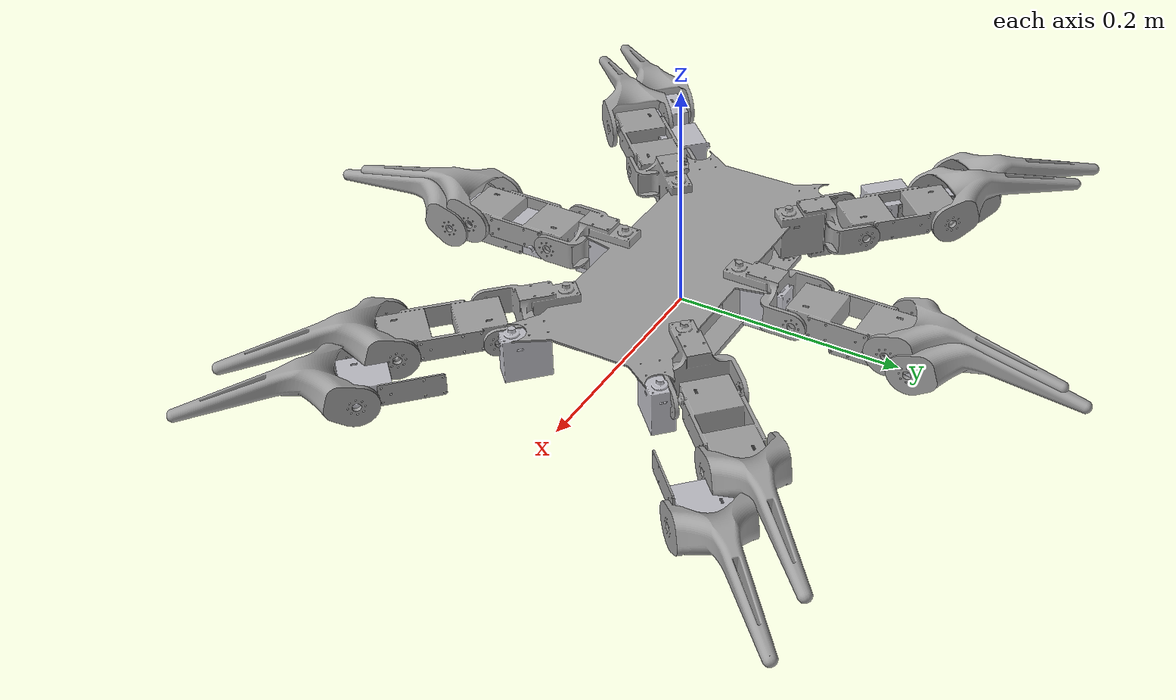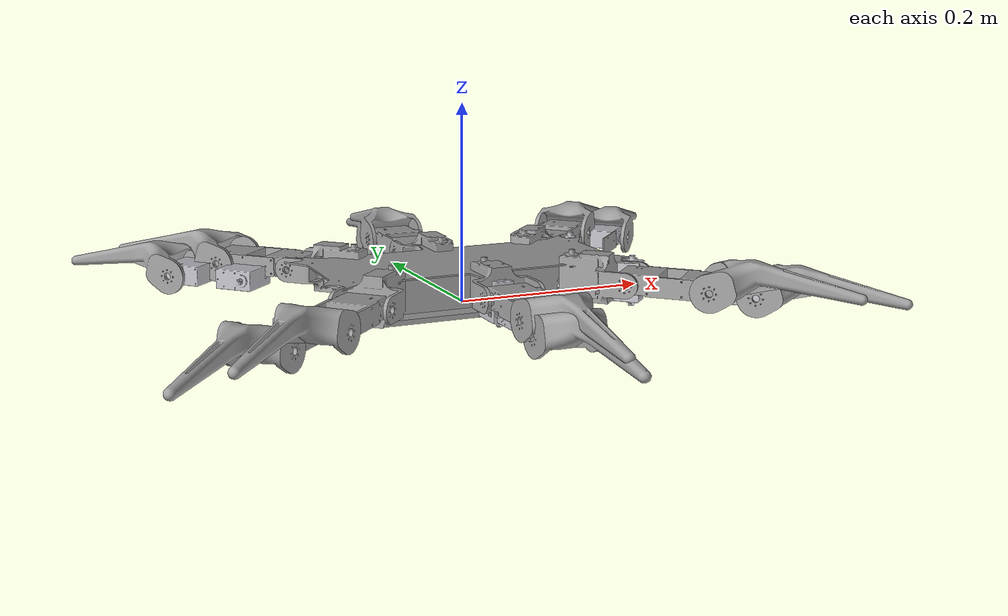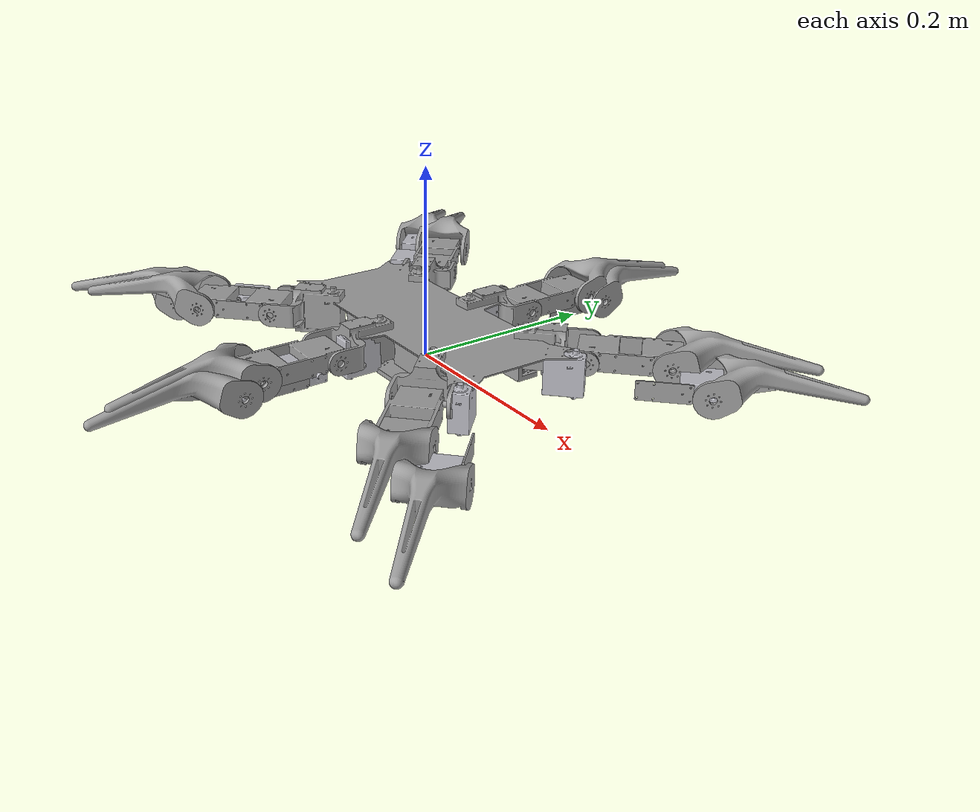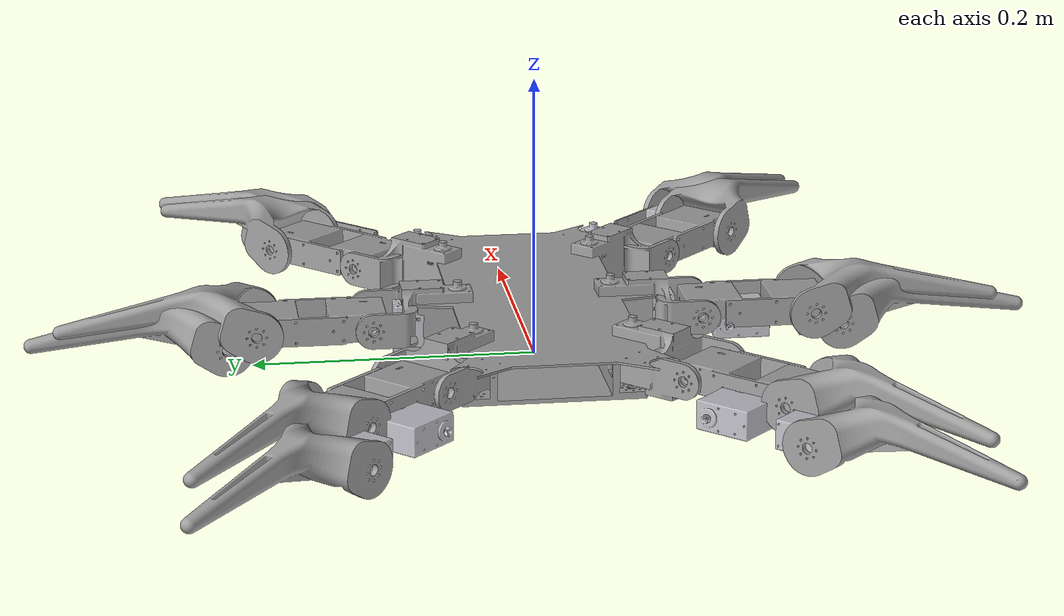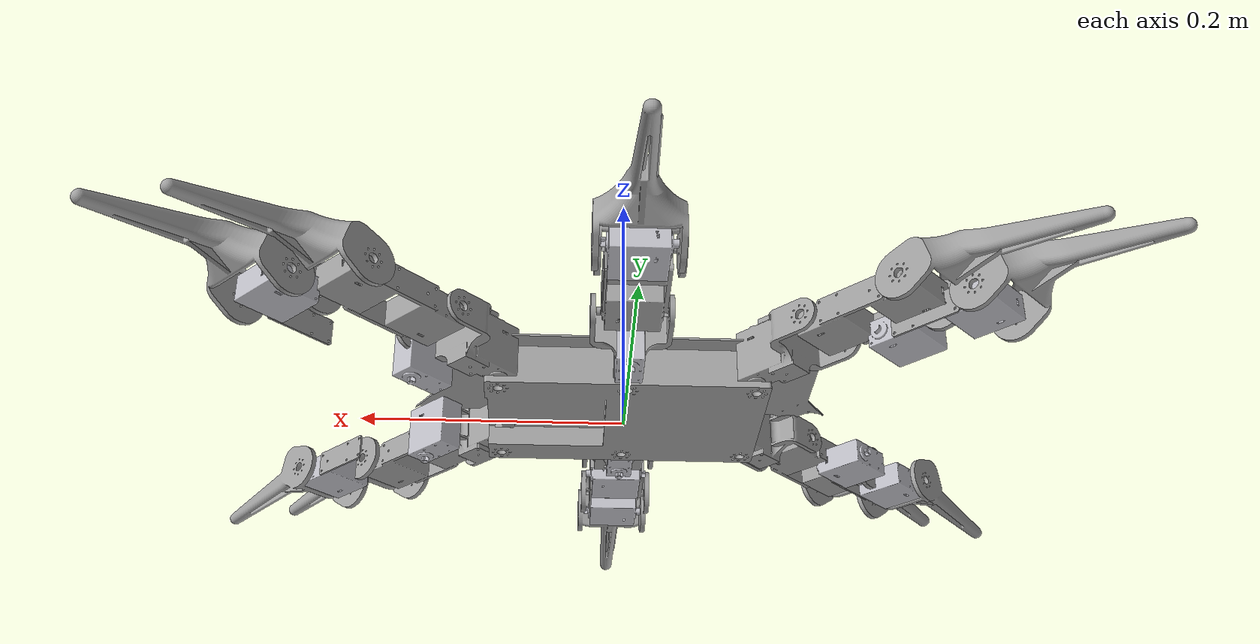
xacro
<?xml version="1.0" ?>
<robot name="spiderrobot" xmlns:xacro="http://www.ros.org/wiki/xacro">

<xacro:include filename="$(find robot_contest)/urdf/materials.xacro" />
<xacro:include filename="$(find robot_contest)/urdf/spiderrobot.trans" />
<xacro:include filename="$(find robot_contest)/urdf/spiderrobot.gazebo" />
<link name="base_link">
  <inertial>
    <origin xyz="3.282245274372618e-08 0.03481866967141663 -0.07599613973394033" rpy="0 0 0"/>
    <mass value="0.32443197759985953"/>
    <inertia ixx="0.002388" iyy="0.005496" izz="0.004327" ixy="-0.0" iyz="0.000796" ixz="-0.0"/>
  </inertial>
  <visual>
    <origin xyz="0 0 0" rpy="0 0 0"/>
    <geometry>
      <mesh filename="package://robot_contest/meshes/base_link.stl" scale="0.001 0.001 0.001"/>
    </geometry>
    <material name="_"/>
  </visual>
  <collision>
    <origin xyz="0 0 0" rpy="0 0 0"/>
    <geometry>
      <mesh filename="package://robot_contest/meshes/base_link.stl" scale="0.001 0.001 0.001"/>
    </geometry>
  </collision>
</link>

<link name="servo1_1">
  <inertial>
    <origin xyz="0.012488449462490642 0.012488246727511476 0.02001368504955774" rpy="0 0 0"/>
    <mass value="0.07069999262512665"/>
    <inertia ixx="1.6e-05" iyy="1.6e-05" izz="1.2e-05" ixy="-3e-06" iyz="-0.0" ixz="-0.0"/>
  </inertial>
  <visual>
    <origin xyz="-0.137126 -0.047626 -0.0015" rpy="0 0 0"/>
    <geometry>
      <mesh filename="package://robot_contest/meshes/servo1_1.stl" scale="0.001 0.001 0.001"/>
    </geometry>
    <material name=""/>
  </visual>
  <collision>
    <origin xyz="-0.137126 -0.047626 -0.0015" rpy="0 0 0"/>
    <geometry>
      <mesh filename="package://robot_contest/meshes/servo1_1.stl" scale="0.001 0.001 0.001"/>
    </geometry>
  </collision>
</link>

<link name="servo2_1">
  <inertial>
    <origin xyz="0.012488449462490642 -0.012488449246155067 0.020013685049556206" rpy="0 0 0"/>
    <mass value="0.07069999262512665"/>
    <inertia ixx="1.6e-05" iyy="1.6e-05" izz="1.2e-05" ixy="3e-06" iyz="0.0" ixz="-0.0"/>
  </inertial>
  <visual>
    <origin xyz="-0.137126 0.047626 -0.0015" rpy="0 0 0"/>
    <geometry>
      <mesh filename="package://robot_contest/meshes/servo2_1.stl" scale="0.001 0.001 0.001"/>
    </geometry>
    <material name=""/>
  </visual>
  <collision>
    <origin xyz="-0.137126 0.047626 -0.0015" rpy="0 0 0"/>
    <geometry>
      <mesh filename="package://robot_contest/meshes/servo2_1.stl" scale="0.001 0.001 0.001"/>
    </geometry>
  </collision>
</link>

<link name="servo3_1">
  <inertial>
    <origin xyz="1.0147565734629952e-07 0.017661611214488462 0.02001368504955727" rpy="0 0 0"/>
    <mass value="0.07069999262512665"/>
    <inertia ixx="1.9e-05" iyy="1.2e-05" izz="1.2e-05" ixy="0.0" iyz="-0.0" ixz="0.0"/>
  </inertial>
  <visual>
    <origin xyz="-0.0 -0.0625 -0.0015" rpy="0 0 0"/>
    <geometry>
      <mesh filename="package://robot_contest/meshes/servo3_1.stl" scale="0.001 0.001 0.001"/>
    </geometry>
    <material name=""/>
  </visual>
  <collision>
    <origin xyz="-0.0 -0.0625 -0.0015" rpy="0 0 0"/>
    <geometry>
      <mesh filename="package://robot_contest/meshes/servo3_1.stl" scale="0.001 0.001 0.001"/>
    </geometry>
  </collision>
</link>

<link name="servo4_1">
  <inertial>
    <origin xyz="1.0147565708061939e-07 -0.017661813733131138 0.02001368504955668" rpy="0 0 0"/>
    <mass value="0.07069999262512665"/>
    <inertia ixx="1.9e-05" iyy="1.2e-05" izz="1.2e-05" ixy="0.0" iyz="0.0" ixz="0.0"/>
  </inertial>
  <visual>
    <origin xyz="-0.0 0.0625 -0.0015" rpy="0 0 0"/>
    <geometry>
      <mesh filename="package://robot_contest/meshes/servo4_1.stl" scale="0.001 0.001 0.001"/>
    </geometry>
    <material name=""/>
  </visual>
  <collision>
    <origin xyz="-0.0 0.0625 -0.0015" rpy="0 0 0"/>
    <geometry>
      <mesh filename="package://robot_contest/meshes/servo4_1.stl" scale="0.001 0.001 0.001"/>
    </geometry>
  </collision>
</link>

<link name="servo5_1">
  <inertial>
    <origin xyz="-0.012488246511175749 0.01248824672751185 0.020013685049556976" rpy="0 0 0"/>
    <mass value="0.07069999262512665"/>
    <inertia ixx="1.6e-05" iyy="1.6e-05" izz="1.2e-05" ixy="3e-06" iyz="-0.0" ixz="0.0"/>
  </inertial>
  <visual>
    <origin xyz="0.137126 -0.047626 -0.0015" rpy="0 0 0"/>
    <geometry>
      <mesh filename="package://robot_contest/meshes/servo5_1.stl" scale="0.001 0.001 0.001"/>
    </geometry>
    <material name=""/>
  </visual>
  <collision>
    <origin xyz="0.137126 -0.047626 -0.0015" rpy="0 0 0"/>
    <geometry>
      <mesh filename="package://robot_contest/meshes/servo5_1.stl" scale="0.001 0.001 0.001"/>
    </geometry>
  </collision>
</link>

<link name="servo6_1">
  <inertial>
    <origin xyz="-0.012488246511176054 -0.012488449246154443 0.02001368504955692" rpy="0 0 0"/>
    <mass value="0.07069999262512665"/>
    <inertia ixx="1.6e-05" iyy="1.6e-05" izz="1.2e-05" ixy="-3e-06" iyz="0.0" ixz="0.0"/>
  </inertial>
  <visual>
    <origin xyz="0.137126 0.047626 -0.0015" rpy="0 0 0"/>
    <geometry>
      <mesh filename="package://robot_contest/meshes/servo6_1.stl" scale="0.001 0.001 0.001"/>
    </geometry>
    <material name=""/>
  </visual>
  <collision>
    <origin xyz="0.137126 0.047626 -0.0015" rpy="0 0 0"/>
    <geometry>
      <mesh filename="package://robot_contest/meshes/servo6_1.stl" scale="0.001 0.001 0.001"/>
    </geometry>
  </collision>
</link>

<link name="cover_1">
  <inertial>
    <origin xyz="-0.15303582986143344 -0.018104806605509255 -0.03691771626412458" rpy="0 0 0"/>
    <mass value="0.32438607775309336"/>
    <inertia ixx="0.001055" iyy="0.004163" izz="0.004326" ixy="0.0" iyz="0.000391" ixz="0.0"/>
  </inertial>
  <visual>
    <origin xyz="-0.153036 -0.052929 -0.0415" rpy="0 0 0"/>
    <geometry>
      <mesh filename="package://robot_contest/meshes/cover_1.stl" scale="0.001 0.001 0.001"/>
    </geometry>
    <material name="_"/>
  </visual>
  <collision>
    <origin xyz="-0.153036 -0.052929 -0.0415" rpy="0 0 0"/>
    <geometry>
      <mesh filename="package://robot_contest/meshes/cover_1.stl" scale="0.001 0.001 0.001"/>
    </geometry>
  </collision>
</link>

<link name="part1_1">
  <inertial>
    <origin xyz="0.008877265681727503 0.008875169024020066 0.01920864547721368" rpy="0 0 0"/>
    <mass value="0.010718837309292628"/>
    <inertia ixx="1e-05" iyy="1e-05" izz="2e-06" ixy="-0.0" iyz="-1e-06" ixz="-1e-06"/>
  </inertial>
  <visual>
    <origin xyz="-0.156571 -0.067071 0.0039" rpy="0 0 0"/>
    <geometry>
      <mesh filename="package://robot_contest/meshes/part1_1.stl" scale="0.001 0.001 0.001"/>
    </geometry>
    <material name="_"/>
  </visual>
  <collision>
    <origin xyz="-0.156571 -0.067071 0.0039" rpy="0 0 0"/>
    <geometry>
      <mesh filename="package://robot_contest/meshes/part1_1.stl" scale="0.001 0.001 0.001"/>
    </geometry>
  </collision>
</link>

<link name="part2_1">
  <inertial>
    <origin xyz="0.008875371758998996 -0.008877265465391831 0.019208645477211746" rpy="0 0 0"/>
    <mass value="0.010718837309292628"/>
    <inertia ixx="1e-05" iyy="1e-05" izz="2e-06" ixy="0.0" iyz="1e-06" ixz="-1e-06"/>
  </inertial>
  <visual>
    <origin xyz="-0.156571 0.067071 0.0039" rpy="0 0 0"/>
    <geometry>
      <mesh filename="package://robot_contest/meshes/part2_1.stl" scale="0.001 0.001 0.001"/>
    </geometry>
    <material name="_"/>
  </visual>
  <collision>
    <origin xyz="-0.156571 0.067071 0.0039" rpy="0 0 0"/>
    <geometry>
      <mesh filename="package://robot_contest/meshes/part2_1.stl" scale="0.001 0.001 0.001"/>
    </geometry>
  </collision>
</link>

<link name="part3_1">
  <inertial>
    <origin xyz="1.4406812617388342e-06 0.012552669650251966 0.019208645477213113" rpy="0 0 0"/>
    <mass value="0.010718837309292628"/>
    <inertia ixx="1.1e-05" iyy="1e-05" izz="2e-06" ixy="0.0" iyz="-1e-06" ixz="0.0"/>
  </inertial>
  <visual>
    <origin xyz="-0.0 -0.09 0.0039" rpy="0 0 0"/>
    <geometry>
      <mesh filename="package://robot_contest/meshes/part3_1.stl" scale="0.001 0.001 0.001"/>
    </geometry>
    <material name="_"/>
  </visual>
  <collision>
    <origin xyz="-0.0 -0.09 0.0039" rpy="0 0 0"/>
    <geometry>
      <mesh filename="package://robot_contest/meshes/part3_1.stl" scale="0.001 0.001 0.001"/>
    </geometry>
  </collision>
</link>

<link name="part4_1">
  <inertial>
    <origin xyz="-1.2377299472739092e-06 -0.012552872168894627 0.01920864547721229" rpy="0 0 0"/>
    <mass value="0.010718837309292628"/>
    <inertia ixx="1.1e-05" iyy="1e-05" izz="2e-06" ixy="0.0" iyz="1e-06" ixz="-0.0"/>
  </inertial>
  <visual>
    <origin xyz="-0.0 0.09 0.0039" rpy="0 0 0"/>
    <geometry>
      <mesh filename="package://robot_contest/meshes/part4_1.stl" scale="0.001 0.001 0.001"/>
    </geometry>
    <material name="_"/>
  </visual>
  <collision>
    <origin xyz="-0.0 0.09 0.0039" rpy="0 0 0"/>
    <geometry>
      <mesh filename="package://robot_contest/meshes/part4_1.stl" scale="0.001 0.001 0.001"/>
    </geometry>
  </collision>
</link>

<link name="part5_1">
  <inertial>
    <origin xyz="-0.008875168807684214 0.008877062946748837 0.019208645477212693" rpy="0 0 0"/>
    <mass value="0.010718837309292628"/>
    <inertia ixx="1e-05" iyy="1e-05" izz="2e-06" ixy="0.0" iyz="-1e-06" ixz="1e-06"/>
  </inertial>
  <visual>
    <origin xyz="0.156571 -0.067071 0.0039" rpy="0 0 0"/>
    <geometry>
      <mesh filename="package://robot_contest/meshes/part5_1.stl" scale="0.001 0.001 0.001"/>
    </geometry>
    <material name="_"/>
  </visual>
  <collision>
    <origin xyz="0.156571 -0.067071 0.0039" rpy="0 0 0"/>
    <geometry>
      <mesh filename="package://robot_contest/meshes/part5_1.stl" scale="0.001 0.001 0.001"/>
    </geometry>
  </collision>
</link>

<link name="part6_1">
  <inertial>
    <origin xyz="-0.008877062730412832 -0.008875371542662686 0.019208645477212644" rpy="0 0 0"/>
    <mass value="0.010718837309292628"/>
    <inertia ixx="1e-05" iyy="1e-05" izz="2e-06" ixy="-0.0" iyz="1e-06" ixz="1e-06"/>
  </inertial>
  <visual>
    <origin xyz="0.156571 0.067071 0.0039" rpy="0 0 0"/>
    <geometry>
      <mesh filename="package://robot_contest/meshes/part6_1.stl" scale="0.001 0.001 0.001"/>
    </geometry>
    <material name="_"/>
  </visual>
  <collision>
    <origin xyz="0.156571 0.067071 0.0039" rpy="0 0 0"/>
    <geometry>
      <mesh filename="package://robot_contest/meshes/part6_1.stl" scale="0.001 0.001 0.001"/>
    </geometry>
  </collision>
</link>

<link name="part7_1">
  <inertial>
    <origin xyz="0.007930031540899107 0.0075518428650224595 -0.00583266079439447" rpy="0 0 0"/>
    <mass value="0.010718837309292628"/>
    <inertia ixx="7e-06" iyy="5e-06" izz="1.1e-05" ixy="4e-06" iyz="-0.0" ixz="0.0"/>
  </inertial>
  <visual>
    <origin xyz="-0.169063 -0.087813 -0.026709" rpy="0 0 0"/>
    <geometry>
      <mesh filename="package://robot_contest/meshes/part7_1.stl" scale="0.001 0.001 0.001"/>
    </geometry>
    <material name="_"/>
  </visual>
  <collision>
    <origin xyz="-0.169063 -0.087813 -0.026709" rpy="0 0 0"/>
    <geometry>
      <mesh filename="package://robot_contest/meshes/part7_1.stl" scale="0.001 0.001 0.001"/>
    </geometry>
  </collision>
</link>

<link name="part8_1">
  <inertial>
    <origin xyz="0.007552045600001611 -0.007930031324563533 -0.005832660794396784" rpy="0 0 0"/>
    <mass value="0.010718837309292628"/>
    <inertia ixx="5e-06" iyy="7e-06" izz="1.1e-05" ixy="-4e-06" iyz="-0.0" ixz="-0.0"/>
  </inertial>
  <visual>
    <origin xyz="-0.177313 0.079563 -0.026709" rpy="0 0 0"/>
    <geometry>
      <mesh filename="package://robot_contest/meshes/part8_1.stl" scale="0.001 0.001 0.001"/>
    </geometry>
    <material name="_"/>
  </visual>
  <collision>
    <origin xyz="-0.177313 0.079563 -0.026709" rpy="0 0 0"/>
    <geometry>
      <mesh filename="package://robot_contest/meshes/part8_1.stl" scale="0.001 0.001 0.001"/>
    </geometry>
  </collision>
</link>

<link name="part9_1">
  <inertial>
    <origin xyz="-0.011400253047129822 0.010947127831105685 -0.0058326607943951884" rpy="0 0 0"/>
    <mass value="0.010718837309292628"/>
    <inertia ixx="2e-06" iyy="1e-05" izz="1.1e-05" ixy="1e-06" iyz="-0.0" ixz="0.0"/>
  </inertial>
  <visual>
    <origin xyz="-0.005834 -0.1135 -0.026709" rpy="0 0 0"/>
    <geometry>
      <mesh filename="package://robot_contest/meshes/part9_1.stl" scale="0.001 0.001 0.001"/>
    </geometry>
    <material name="_"/>
  </visual>
  <collision>
    <origin xyz="-0.005834 -0.1135 -0.026709" rpy="0 0 0"/>
    <geometry>
      <mesh filename="package://robot_contest/meshes/part9_1.stl" scale="0.001 0.001 0.001"/>
    </geometry>
  </collision>
</link>

<link name="part10_1">
  <inertial>
    <origin xyz="-0.00026754400155569024 -0.01094733034974836 -0.005832660794396226" rpy="0 0 0"/>
    <mass value="0.010718837309292628"/>
    <inertia ixx="2e-06" iyy="1e-05" izz="1.1e-05" ixy="1e-06" iyz="0.0" ixz="-0.0"/>
  </inertial>
  <visual>
    <origin xyz="-0.005834 0.1135 -0.026709" rpy="0 0 0"/>
    <geometry>
      <mesh filename="package://robot_contest/meshes/part10_1.stl" scale="0.001 0.001 0.001"/>
    </geometry>
    <material name="_"/>
  </visual>
  <collision>
    <origin xyz="-0.005834 0.1135 -0.026709" rpy="0 0 0"/>
    <geometry>
      <mesh filename="package://robot_contest/meshes/part10_1.stl" scale="0.001 0.001 0.001"/>
    </geometry>
  </collision>
</link>

<link name="part11_1">
  <inertial>
    <origin xyz="-0.00755184264868658 0.00792982880592033 -0.0058326607943957505" rpy="0 0 0"/>
    <mass value="0.010718837309292628"/>
    <inertia ixx="5e-06" iyy="7e-06" izz="1.1e-05" ixy="-4e-06" iyz="0.0" ixz="0.0"/>
  </inertial>
  <visual>
    <origin xyz="0.177313 -0.079563 -0.026709" rpy="0 0 0"/>
    <geometry>
      <mesh filename="package://robot_contest/meshes/part11_1.stl" scale="0.001 0.001 0.001"/>
    </geometry>
    <material name="_"/>
  </visual>
  <collision>
    <origin xyz="0.177313 -0.079563 -0.026709" rpy="0 0 0"/>
    <geometry>
      <mesh filename="package://robot_contest/meshes/part11_1.stl" scale="0.001 0.001 0.001"/>
    </geometry>
  </collision>
</link>

<link name="part12_1">
  <inertial>
    <origin xyz="-0.007929828589584353 -0.007552045383665287 -0.0058326607943957505" rpy="0 0 0"/>
    <mass value="0.010718837309292628"/>
    <inertia ixx="7e-06" iyy="5e-06" izz="1.1e-05" ixy="4e-06" iyz="0.0" ixz="-0.0"/>
  </inertial>
  <visual>
    <origin xyz="0.169063 0.087813 -0.026709" rpy="0 0 0"/>
    <geometry>
      <mesh filename="package://robot_contest/meshes/part12_1.stl" scale="0.001 0.001 0.001"/>
    </geometry>
    <material name="_"/>
  </visual>
  <collision>
    <origin xyz="0.169063 0.087813 -0.026709" rpy="0 0 0"/>
    <geometry>
      <mesh filename="package://robot_contest/meshes/part12_1.stl" scale="0.001 0.001 0.001"/>
    </geometry>
  </collision>
</link>

<link name="servo7_1">
  <inertial>
    <origin xyz="0.025704526357907126 -0.011790913436240488 1.4085954624931674e-15" rpy="0 0 0"/>
    <mass value="0.07069999262512665"/>
    <inertia ixx="1.2e-05" iyy="1.2e-05" izz="1.9e-05" ixy="0.0" iyz="-0.0" ixz="-0.0"/>
  </inertial>
  <visual>
    <origin xyz="-0.171509 -0.118601 -0.020875" rpy="0 0 0"/>
    <geometry>
      <mesh filename="package://robot_contest/meshes/servo7_1.stl" scale="0.001 0.001 0.001"/>
    </geometry>
    <material name=""/>
  </visual>
  <collision>
    <origin xyz="-0.171509 -0.118601 -0.020875" rpy="0 0 0"/>
    <geometry>
      <mesh filename="package://robot_contest/meshes/servo7_1.stl" scale="0.001 0.001 0.001"/>
    </geometry>
  </collision>
</link>

<link name="servo8_1">
  <inertial>
    <origin xyz="0.025704526357907154 0.011791710917596607 -1.366962099069724e-15" rpy="0 0 0"/>
    <mass value="0.07069999262512665"/>
    <inertia ixx="1.2e-05" iyy="1.2e-05" izz="1.9e-05" ixy="-0.0" iyz="-0.0" ixz="-0.0"/>
  </inertial>
  <visual>
    <origin xyz="-0.171509 0.118602 -0.020875" rpy="0 0 0"/>
    <geometry>
      <mesh filename="package://robot_contest/meshes/servo8_1.stl" scale="0.001 0.001 0.001"/>
    </geometry>
    <material name=""/>
  </visual>
  <collision>
    <origin xyz="-0.171509 0.118602 -0.020875" rpy="0 0 0"/>
    <geometry>
      <mesh filename="package://robot_contest/meshes/servo8_1.stl" scale="0.001 0.001 0.001"/>
    </geometry>
  </collision>
</link>

<link name="servo9_1">
  <inertial>
    <origin xyz="0.026513786525214435 0.009838186266869442 5.793976409762536e-16" rpy="0 0 0"/>
    <mass value="0.07069999262512665"/>
    <inertia ixx="1.2e-05" iyy="1.2e-05" izz="1.9e-05" ixy="0.0" iyz="-0.0" ixz="-0.0"/>
  </inertial>
  <visual>
    <origin xyz="0.025875 -0.137 -0.020875" rpy="0 0 0"/>
    <geometry>
      <mesh filename="package://robot_contest/meshes/servo9_1.stl" scale="0.001 0.001 0.001"/>
    </geometry>
    <material name=""/>
  </visual>
  <collision>
    <origin xyz="0.025875 -0.137 -0.020875" rpy="0 0 0"/>
    <geometry>
      <mesh filename="package://robot_contest/meshes/servo9_1.stl" scale="0.001 0.001 0.001"/>
    </geometry>
  </collision>
</link>

<link name="servo10_1">
  <inertial>
    <origin xyz="0.026513786525213995 -0.009838388785511742 -5.585809592645319e-16" rpy="0 0 0"/>
    <mass value="0.07069999262512665"/>
    <inertia ixx="1.2e-05" iyy="1.2e-05" izz="1.9e-05" ixy="-0.0" iyz="-0.0" ixz="0.0"/>
  </inertial>
  <visual>
    <origin xyz="0.025875 0.137 -0.020875" rpy="0 0 0"/>
    <geometry>
      <mesh filename="package://robot_contest/meshes/servo10_1.stl" scale="0.001 0.001 0.001"/>
    </geometry>
    <material name=""/>
  </visual>
  <collision>
    <origin xyz="0.025875 0.137 -0.020875" rpy="0 0 0"/>
    <geometry>
      <mesh filename="package://robot_contest/meshes/servo10_1.stl" scale="0.001 0.001 0.001"/>
    </geometry>
  </collision>
</link>

<link name="servo11_1">
  <inertial>
    <origin xyz="0.011790913652576313 0.025704323622928404 -2.7755575615628914e-17" rpy="0 0 0"/>
    <mass value="0.07069999262512665"/>
    <inertia ixx="1.2e-05" iyy="1.2e-05" izz="1.9e-05" ixy="-0.0" iyz="-0.0" ixz="-0.0"/>
  </inertial>
  <visual>
    <origin xyz="0.208101 -0.082009 -0.020875" rpy="0 0 0"/>
    <geometry>
      <mesh filename="package://robot_contest/meshes/servo11_1.stl" scale="0.001 0.001 0.001"/>
    </geometry>
    <material name=""/>
  </visual>
  <collision>
    <origin xyz="0.208101 -0.082009 -0.020875" rpy="0 0 0"/>
    <geometry>
      <mesh filename="package://robot_contest/meshes/servo11_1.stl" scale="0.001 0.001 0.001"/>
    </geometry>
  </collision>
</link>

<link name="servo12_1">
  <inertial>
    <origin xyz="0.011790913652575896 -0.02570452614157083 -2.42861286636753e-17" rpy="0 0 0"/>
    <mass value="0.07069999262512665"/>
    <inertia ixx="1.2e-05" iyy="1.2e-05" izz="1.9e-05" ixy="0.0" iyz="-0.0" ixz="-0.0"/>
  </inertial>
  <visual>
    <origin xyz="0.208101 0.082009 -0.020875" rpy="0 0 0"/>
    <geometry>
      <mesh filename="package://robot_contest/meshes/servo12_1.stl" scale="0.001 0.001 0.001"/>
    </geometry>
    <material name=""/>
  </visual>
  <collision>
    <origin xyz="0.208101 0.082009 -0.020875" rpy="0 0 0"/>
    <geometry>
      <mesh filename="package://robot_contest/meshes/servo12_1.stl" scale="0.001 0.001 0.001"/>
    </geometry>
  </collision>
</link>

<link name="part13_1">
  <inertial>
    <origin xyz="0.057132069906387195 -0.03834292511619296 3.9216201648539784e-07" rpy="0 0 0"/>
    <mass value="0.12025967261023773"/>
    <inertia ixx="8.8e-05" iyy="8.6e-05" izz="0.000166" ixy="-4.5e-05" iyz="0.0" ixz="-0.0"/>
  </inertial>
  <visual>
    <origin xyz="-0.19555 -0.133451 -0.020875" rpy="0 0 0"/>
    <geometry>
      <mesh filename="package://robot_contest/meshes/part13_1.stl" scale="0.001 0.001 0.001"/>
    </geometry>
    <material name="_"/>
  </visual>
  <collision>
    <origin xyz="-0.19555 -0.133451 -0.020875" rpy="0 0 0"/>
    <geometry>
      <mesh filename="package://robot_contest/meshes/part13_1.stl" scale="0.001 0.001 0.001"/>
    </geometry>
  </collision>
</link>

<link name="part14_1">
  <inertial>
    <origin xyz="-0.03940277032397255 -0.058192117632806906 3.921620186468633e-07" rpy="0 0 0"/>
    <mass value="0.12025967261023773"/>
    <inertia ixx="8.6e-05" iyy="8.8e-05" izz="0.000166" ixy="4.5e-05" iyz="0.0" ixz="0.0"/>
  </inertial>
  <visual>
    <origin xyz="-0.19555 0.133451 -0.020875" rpy="0 0 0"/>
    <geometry>
      <mesh filename="package://robot_contest/meshes/part14_1.stl" scale="0.001 0.001 0.001"/>
    </geometry>
    <material name="_"/>
  </visual>
  <collision>
    <origin xyz="-0.19555 0.133451 -0.020875" rpy="0 0 0"/>
    <geometry>
      <mesh filename="package://robot_contest/meshes/part14_1.stl" scale="0.001 0.001 0.001"/>
    </geometry>
  </collision>
</link>

<link name="part15_1">
  <inertial>
    <origin xyz="0.06751054162330213 0.01328579774012012 3.921620219150823e-07" rpy="0 0 0"/>
    <mass value="0.12025967261023773"/>
    <inertia ixx="0.000132" iyy="4.2e-05" izz="0.000166" ixy="1e-06" iyz="0.0" ixz="-0.0"/>
  </inertial>
  <visual>
    <origin xyz="0.019375 -0.1645 -0.020875" rpy="0 0 0"/>
    <geometry>
      <mesh filename="package://robot_contest/meshes/part15_1.stl" scale="0.001 0.001 0.001"/>
    </geometry>
    <material name="_"/>
  </visual>
  <collision>
    <origin xyz="0.019375 -0.1645 -0.020875" rpy="0 0 0"/>
    <geometry>
      <mesh filename="package://robot_contest/meshes/part15_1.stl" scale="0.001 0.001 0.001"/>
    </geometry>
  </collision>
</link>

<link name="part16_1">
  <inertial>
    <origin xyz="-0.06901033867198803 -0.013286000258761477 3.921620202601561e-07" rpy="0 0 0"/>
    <mass value="0.12025967261023773"/>
    <inertia ixx="0.000132" iyy="4.2e-05" izz="0.000166" ixy="1e-06" iyz="-0.0" ixz="0.0"/>
  </inertial>
  <visual>
    <origin xyz="0.019375 0.1645 -0.020875" rpy="0 0 0"/>
    <geometry>
      <mesh filename="package://robot_contest/meshes/part16_1.stl" scale="0.001 0.001 0.001"/>
    </geometry>
    <material name="_"/>
  </visual>
  <collision>
    <origin xyz="0.019375 0.1645 -0.020875" rpy="0 0 0"/>
    <geometry>
      <mesh filename="package://robot_contest/meshes/part16_1.stl" scale="0.001 0.001 0.001"/>
    </geometry>
  </collision>
</link>

<link name="part17_1">
  <inertial>
    <origin xyz="0.03834292533252934 0.05713186717140509 3.921620210269039e-07" rpy="0 0 0"/>
    <mass value="0.12025967261023773"/>
    <inertia ixx="8.6e-05" iyy="8.8e-05" izz="0.000166" ixy="4.5e-05" iyz="-0.0" ixz="-0.0"/>
  </inertial>
  <visual>
    <origin xyz="0.222951 -0.10605 -0.020875" rpy="0 0 0"/>
    <geometry>
      <mesh filename="package://robot_contest/meshes/part17_1.stl" scale="0.001 0.001 0.001"/>
    </geometry>
    <material name="_"/>
  </visual>
  <collision>
    <origin xyz="0.222951 -0.10605 -0.020875" rpy="0 0 0"/>
    <geometry>
      <mesh filename="package://robot_contest/meshes/part17_1.stl" scale="0.001 0.001 0.001"/>
    </geometry>
  </collision>
</link>

<link name="part18_1">
  <inertial>
    <origin xyz="-0.05819191489782782 0.039402770540309315 3.9216202103731224e-07" rpy="0 0 0"/>
    <mass value="0.12025967261023773"/>
    <inertia ixx="8.8e-05" iyy="8.6e-05" izz="0.000166" ixy="-4.5e-05" iyz="-0.0" ixz="0.0"/>
  </inertial>
  <visual>
    <origin xyz="0.222951 0.10605 -0.020875" rpy="0 0 0"/>
    <geometry>
      <mesh filename="package://robot_contest/meshes/part18_1.stl" scale="0.001 0.001 0.001"/>
    </geometry>
    <material name="_"/>
  </visual>
  <collision>
    <origin xyz="0.222951 0.10605 -0.020875" rpy="0 0 0"/>
    <geometry>
      <mesh filename="package://robot_contest/meshes/part18_1.stl" scale="0.001 0.001 0.001"/>
    </geometry>
  </collision>
</link>

<link name="part19_1">
  <inertial>
    <origin xyz="-0.03852088697722983 0.05695393562242289 -0.007499607837977276" rpy="0 0 0"/>
    <mass value="0.12025967261023773"/>
    <inertia ixx="8.8e-05" iyy="8.6e-05" izz="0.000166" ixy="-4.5e-05" iyz="-0.0" ixz="0.0"/>
  </inertial>
  <visual>
    <origin xyz="-0.223835 -0.105166 -0.028375" rpy="0 0 0"/>
    <geometry>
      <mesh filename="package://robot_contest/meshes/part19_1.stl" scale="0.001 0.001 0.001"/>
    </geometry>
    <material name="_"/>
  </visual>
  <collision>
    <origin xyz="-0.223835 -0.105166 -0.028375" rpy="0 0 0"/>
    <geometry>
      <mesh filename="package://robot_contest/meshes/part19_1.stl" scale="0.001 0.001 0.001"/>
    </geometry>
  </collision>
</link>

<link name="part20_1">
  <inertial>
    <origin xyz="0.06862095325312759 0.02897470208928979 -0.007499607837979996" rpy="0 0 0"/>
    <mass value="0.12025967261023773"/>
    <inertia ixx="8.6e-05" iyy="8.8e-05" izz="0.000166" ixy="4.5e-05" iyz="-0.0" ixz="-0.0"/>
  </inertial>
  <visual>
    <origin xyz="-0.213228 0.09456 -0.028375" rpy="0 0 0"/>
    <geometry>
      <mesh filename="package://robot_contest/meshes/part20_1.stl" scale="0.001 0.001 0.001"/>
    </geometry>
    <material name="_"/>
  </visual>
  <collision>
    <origin xyz="-0.213228 0.09456 -0.028375" rpy="0 0 0"/>
    <geometry>
      <mesh filename="package://robot_contest/meshes/part20_1.stl" scale="0.001 0.001 0.001"/>
    </geometry>
  </collision>
</link>

<link name="part21_1">
  <inertial>
    <origin xyz="-0.06751033867198804 0.028033999741238408 -0.007499607837978341" rpy="0 0 0"/>
    <mass value="0.12025967261023773"/>
    <inertia ixx="0.000132" iyy="4.2e-05" izz="0.000166" ixy="1e-06" iyz="-0.0" ixz="0.0"/>
  </inertial>
  <visual>
    <origin xyz="-0.020625 -0.1495 -0.028375" rpy="0 0 0"/>
    <geometry>
      <mesh filename="package://robot_contest/meshes/part21_1.stl" scale="0.001 0.001 0.001"/>
    </geometry>
    <material name="_"/>
  </visual>
  <collision>
    <origin xyz="-0.020625 -0.1495 -0.028375" rpy="0 0 0"/>
    <geometry>
      <mesh filename="package://robot_contest/meshes/part21_1.stl" scale="0.001 0.001 0.001"/>
    </geometry>
  </collision>
</link>

<link name="part22_1">
  <inertial>
    <origin xyz="0.06901054162330238 -0.028034202259880597 -0.007499607837979771" rpy="0 0 0"/>
    <mass value="0.12025967261023773"/>
    <inertia ixx="0.000132" iyy="4.2e-05" izz="0.000166" ixy="1e-06" iyz="0.0" ixz="-0.0"/>
  </inertial>
  <visual>
    <origin xyz="-0.020625 0.1495 -0.028375" rpy="0 0 0"/>
    <geometry>
      <mesh filename="package://robot_contest/meshes/part22_1.stl" scale="0.001 0.001 0.001"/>
    </geometry>
    <material name="_"/>
  </visual>
  <collision>
    <origin xyz="-0.020625 0.1495 -0.028375" rpy="0 0 0"/>
    <geometry>
      <mesh filename="package://robot_contest/meshes/part22_1.stl" scale="0.001 0.001 0.001"/>
    </geometry>
  </collision>
</link>

<link name="part23_1">
  <inertial>
    <origin xyz="-0.06755993540608735 -0.027914089712207935 -0.007499607837979202" rpy="0 0 0"/>
    <mass value="0.12025967261023773"/>
    <inertia ixx="8.6e-05" iyy="8.8e-05" izz="0.000166" ixy="4.5e-05" iyz="0.0" ixz="0.0"/>
  </inertial>
  <visual>
    <origin xyz="0.18406 -0.123728 -0.028375" rpy="0 0 0"/>
    <geometry>
      <mesh filename="package://robot_contest/meshes/part23_1.stl" scale="0.001 0.001 0.001"/>
    </geometry>
    <material name="_"/>
  </visual>
  <collision>
    <origin xyz="0.18406 -0.123728 -0.028375" rpy="0 0 0"/>
    <geometry>
      <mesh filename="package://robot_contest/meshes/part23_1.stl" scale="0.001 0.001 0.001"/>
    </geometry>
  </collision>
</link>

<link name="part24_1">
  <inertial>
    <origin xyz="0.02897490482426915 -0.06862095303679103 -0.007499607837979087" rpy="0 0 0"/>
    <mass value="0.12025967261023773"/>
    <inertia ixx="8.8e-05" iyy="8.6e-05" izz="0.000166" ixy="-4.5e-05" iyz="0.0" ixz="-0.0"/>
  </inertial>
  <visual>
    <origin xyz="0.18406 0.123728 -0.028375" rpy="0 0 0"/>
    <geometry>
      <mesh filename="package://robot_contest/meshes/part24_1.stl" scale="0.001 0.001 0.001"/>
    </geometry>
    <material name="_"/>
  </visual>
  <collision>
    <origin xyz="0.18406 0.123728 -0.028375" rpy="0 0 0"/>
    <geometry>
      <mesh filename="package://robot_contest/meshes/part24_1.stl" scale="0.001 0.001 0.001"/>
    </geometry>
  </collision>
</link>

<link name="servo13_1">
  <inertial>
    <origin xyz="-0.0016633434287527116 0.02664092394247075 1.9845236565174673e-15" rpy="0 0 0"/>
    <mass value="0.07069999262512665"/>
    <inertia ixx="1.2e-05" iyy="1.2e-05" izz="1.9e-05" ixy="0.0" iyz="0.0" ixz="0.0"/>
  </inertial>
  <visual>
    <origin xyz="-0.242446 -0.123777 -0.020875" rpy="0 0 0"/>
    <geometry>
      <mesh filename="package://robot_contest/meshes/servo13_1.stl" scale="0.001 0.001 0.001"/>
    </geometry>
    <material name=""/>
  </visual>
  <collision>
    <origin xyz="-0.242446 -0.123777 -0.020875" rpy="0 0 0"/>
    <geometry>
      <mesh filename="package://robot_contest/meshes/servo13_1.stl" scale="0.001 0.001 0.001"/>
    </geometry>
  </collision>
</link>

<link name="servo14_1">
  <inertial>
    <origin xyz="-0.0016633434287518234 -0.02664012646111391 -1.8006429680639258e-15" rpy="0 0 0"/>
    <mass value="0.07069999262512665"/>
    <inertia ixx="1.2e-05" iyy="1.2e-05" izz="1.9e-05" ixy="-0.0" iyz="-0.0" ixz="0.0"/>
  </inertial>
  <visual>
    <origin xyz="-0.242446 0.123778 -0.020875" rpy="0 0 0"/>
    <geometry>
      <mesh filename="package://robot_contest/meshes/servo14_1.stl" scale="0.001 0.001 0.001"/>
    </geometry>
    <material name=""/>
  </visual>
  <collision>
    <origin xyz="-0.242446 0.123778 -0.020875" rpy="0 0 0"/>
    <geometry>
      <mesh filename="package://robot_contest/meshes/servo14_1.stl" scale="0.001 0.001 0.001"/>
    </geometry>
  </collision>
</link>

<link name="servo15_1">
  <inertial>
    <origin xyz="-0.02001358357389976 0.017661611214488893 7.042977312465837e-16" rpy="0 0 0"/>
    <mass value="0.07069999262512665"/>
    <inertia ixx="1.2e-05" iyy="1.2e-05" izz="1.9e-05" ixy="0.0" iyz="0.0" ixz="0.0"/>
  </inertial>
  <visual>
    <origin xyz="-0.020625 -0.19082 -0.020875" rpy="0 0 0"/>
    <geometry>
      <mesh filename="package://robot_contest/meshes/servo15_1.stl" scale="0.001 0.001 0.001"/>
    </geometry>
    <material name=""/>
  </visual>
  <collision>
    <origin xyz="-0.020625 -0.19082 -0.020875" rpy="0 0 0"/>
    <geometry>
      <mesh filename="package://robot_contest/meshes/servo15_1.stl" scale="0.001 0.001 0.001"/>
    </geometry>
  </collision>
</link>

<link name="servo16_1">
  <inertial>
    <origin xyz="-0.020013583573899388 -0.01766181373313125 -8.187894806610529e-16" rpy="0 0 0"/>
    <mass value="0.07069999262512665"/>
    <inertia ixx="1.2e-05" iyy="1.2e-05" izz="1.9e-05" ixy="-0.0" iyz="0.0" ixz="-0.0"/>
  </inertial>
  <visual>
    <origin xyz="-0.020625 0.19082 -0.020875" rpy="0 0 0"/>
    <geometry>
      <mesh filename="package://robot_contest/meshes/servo16_1.stl" scale="0.001 0.001 0.001"/>
    </geometry>
    <material name=""/>
  </visual>
  <collision>
    <origin xyz="-0.020625 0.19082 -0.020875" rpy="0 0 0"/>
    <geometry>
      <mesh filename="package://robot_contest/meshes/servo16_1.stl" scale="0.001 0.001 0.001"/>
    </geometry>
  </collision>
</link>

<link name="servo17_1">
  <inertial>
    <origin xyz="-0.026640923726134302 -0.0016635461637316273 -4.5102810375396984e-17" rpy="0 0 0"/>
    <mass value="0.07069999262512665"/>
    <inertia ixx="1.2e-05" iyy="1.2e-05" izz="1.9e-05" ixy="-0.0" iyz="0.0" ixz="-0.0"/>
  </inertial>
  <visual>
    <origin xyz="0.213277 -0.152946 -0.020875" rpy="0 0 0"/>
    <geometry>
      <mesh filename="package://robot_contest/meshes/servo17_1.stl" scale="0.001 0.001 0.001"/>
    </geometry>
    <material name=""/>
  </visual>
  <collision>
    <origin xyz="0.213277 -0.152946 -0.020875" rpy="0 0 0"/>
    <geometry>
      <mesh filename="package://robot_contest/meshes/servo17_1.stl" scale="0.001 0.001 0.001"/>
    </geometry>
  </collision>
</link>

<link name="servo18_1">
  <inertial>
    <origin xyz="-0.02664092372613458 0.0016633436450886052 -3.469446951953614e-18" rpy="0 0 0"/>
    <mass value="0.07069999262512665"/>
    <inertia ixx="1.2e-05" iyy="1.2e-05" izz="1.9e-05" ixy="0.0" iyz="-0.0" ixz="0.0"/>
  </inertial>
  <visual>
    <origin xyz="0.213277 0.152946 -0.020875" rpy="0 0 0"/>
    <geometry>
      <mesh filename="package://robot_contest/meshes/servo18_1.stl" scale="0.001 0.001 0.001"/>
    </geometry>
    <material name=""/>
  </visual>
  <collision>
    <origin xyz="0.213277 0.152946 -0.020875" rpy="0 0 0"/>
    <geometry>
      <mesh filename="package://robot_contest/meshes/servo18_1.stl" scale="0.001 0.001 0.001"/>
    </geometry>
  </collision>
</link>

<link name="part25_1">
  <inertial>
    <origin xyz="0.0017361935097957026 0.044915648494241484 0.008899740383932198" rpy="0 0 0"/>
    <mass value="0.06576925216163401"/>
    <inertia ixx="4.5e-05" iyy="7e-05" izz="0.000103" ixy="-1.7e-05" iyz="1e-06" ixz="-4e-06"/>
  </inertial>
  <visual>
    <origin xyz="-0.26571 -0.139404 -0.020875" rpy="0 0 0"/>
    <geometry>
      <mesh filename="package://robot_contest/meshes/part25_1.stl" scale="0.001 0.001 0.001"/>
    </geometry>
    <material name="_"/>
  </visual>
  <collision>
    <origin xyz="-0.26571 -0.139404 -0.020875" rpy="0 0 0"/>
    <geometry>
      <mesh filename="package://robot_contest/meshes/part25_1.stl" scale="0.001 0.001 0.001"/>
    </geometry>
  </collision>
</link>

<link name="part26_1">
  <inertial>
    <origin xyz="0.009877618182187353 -0.03677342634049424 0.008899740383927643" rpy="0 0 0"/>
    <mass value="0.06576925216163401"/>
    <inertia ixx="7e-05" iyy="4.5e-05" izz="0.000103" ixy="1.7e-05" iyz="4e-06" ixz="1e-06"/>
  </inertial>
  <visual>
    <origin xyz="-0.26571 0.139405 -0.020875" rpy="0 0 0"/>
    <geometry>
      <mesh filename="package://robot_contest/meshes/part26_1.stl" scale="0.001 0.001 0.001"/>
    </geometry>
    <material name="_"/>
  </visual>
  <collision>
    <origin xyz="-0.26571 0.139405 -0.020875" rpy="0 0 0"/>
    <geometry>
      <mesh filename="package://robot_contest/meshes/part26_1.stl" scale="0.001 0.001 0.001"/>
    </geometry>
  </collision>
</link>

<link name="part27_1">
  <inertial>
    <origin xyz="-0.03053175511870967 0.03298771831863015 0.008899740383930703" rpy="0 0 0"/>
    <mass value="0.06576925216163401"/>
    <inertia ixx="7.4e-05" iyy="4e-05" izz="0.000103" ixy="-1.2e-05" iyz="-2e-06" ixz="-3e-06"/>
  </inertial>
  <visual>
    <origin xyz="-0.026025 -0.21832 -0.020875" rpy="0 0 0"/>
    <geometry>
      <mesh filename="package://robot_contest/meshes/part27_1.stl" scale="0.001 0.001 0.001"/>
    </geometry>
    <material name="_"/>
  </visual>
  <collision>
    <origin xyz="-0.026025 -0.21832 -0.020875" rpy="0 0 0"/>
    <geometry>
      <mesh filename="package://robot_contest/meshes/part27_1.stl" scale="0.001 0.001 0.001"/>
    </geometry>
  </collision>
</link>

<link name="part28_1">
  <inertial>
    <origin xyz="-0.019018041929975315 -0.032987920837272505 0.00889974038392878" rpy="0 0 0"/>
    <mass value="0.06576925216163401"/>
    <inertia ixx="7.4e-05" iyy="4e-05" izz="0.000103" ixy="-1.2e-05" iyz="2e-06" ixz="3e-06"/>
  </inertial>
  <visual>
    <origin xyz="-0.026025 0.21832 -0.020875" rpy="0 0 0"/>
    <geometry>
      <mesh filename="package://robot_contest/meshes/part28_1.stl" scale="0.001 0.001 0.001"/>
    </geometry>
    <material name="_"/>
  </visual>
  <collision>
    <origin xyz="-0.026025 0.21832 -0.020875" rpy="0 0 0"/>
    <geometry>
      <mesh filename="package://robot_contest/meshes/part28_1.stl" scale="0.001 0.001 0.001"/>
    </geometry>
  </collision>
</link>

<link name="part29_1">
  <inertial>
    <origin xyz="-0.04491564827790512 0.00173699077481701 0.008899740383929485" rpy="0 0 0"/>
    <mass value="0.06576925216163401"/>
    <inertia ixx="7e-05" iyy="4.5e-05" izz="0.000103" ixy="1.7e-05" iyz="-4e-06" ixz="-1e-06"/>
  </inertial>
  <visual>
    <origin xyz="0.228904 -0.176209 -0.020875" rpy="0 0 0"/>
    <geometry>
      <mesh filename="package://robot_contest/meshes/part29_1.stl" scale="0.001 0.001 0.001"/>
    </geometry>
    <material name="_"/>
  </visual>
  <collision>
    <origin xyz="0.228904 -0.176209 -0.020875" rpy="0 0 0"/>
    <geometry>
      <mesh filename="package://robot_contest/meshes/part29_1.stl" scale="0.001 0.001 0.001"/>
    </geometry>
  </collision>
</link>

<link name="part30_1">
  <inertial>
    <origin xyz="-0.03677422360551508 -0.009877617965850238 0.008899740383929784" rpy="0 0 0"/>
    <mass value="0.06576925216163401"/>
    <inertia ixx="4.5e-05" iyy="7e-05" izz="0.000103" ixy="-1.7e-05" iyz="-1e-06" ixz="4e-06"/>
  </inertial>
  <visual>
    <origin xyz="0.228904 0.17621 -0.020875" rpy="0 0 0"/>
    <geometry>
      <mesh filename="package://robot_contest/meshes/part30_1.stl" scale="0.001 0.001 0.001"/>
    </geometry>
    <material name="_"/>
  </visual>
  <collision>
    <origin xyz="0.228904 0.17621 -0.020875" rpy="0 0 0"/>
    <geometry>
      <mesh filename="package://robot_contest/meshes/part30_1.stl" scale="0.001 0.001 0.001"/>
    </geometry>
  </collision>
</link>

<link name="part31_1">
  <inertial>
    <origin xyz="0.0008355892395670028 0.0008840642622905404 -0.0002871256335237986" rpy="0 0 0"/>
    <mass value="0.0010275626277354132"/>
    <inertia ixx="0.0" iyy="0.0" izz="0.0" ixy="0.0" iyz="-0.0" ixz="-0.0"/>
  </inertial>
  <visual>
    <origin xyz="-0.343872 -0.252161 -0.020875" rpy="0 0 0"/>
    <geometry>
      <mesh filename="package://robot_contest/meshes/part31_1.stl" scale="0.001 0.001 0.001"/>
    </geometry>
    <material name="_"/>
  </visual>
  <collision>
    <origin xyz="-0.343872 -0.252161 -0.020875" rpy="0 0 0"/>
    <geometry>
      <mesh filename="package://robot_contest/meshes/part31_1.stl" scale="0.001 0.001 0.001"/>
    </geometry>
  </collision>
</link>

<link name="part32_1">
  <inertial>
    <origin xyz="0.0008355892395553455 -0.0008842667809457194 -0.00028712563353011297" rpy="0 0 0"/>
    <mass value="0.0010275626277354132"/>
    <inertia ixx="0.0" iyy="0.0" izz="0.0" ixy="-0.0" iyz="0.0" ixz="-0.0"/>
  </inertial>
  <visual>
    <origin xyz="-0.343872 0.252161 -0.020875" rpy="0 0 0"/>
    <geometry>
      <mesh filename="package://robot_contest/meshes/part32_1.stl" scale="0.001 0.001 0.001"/>
    </geometry>
    <material name="_"/>
  </visual>
  <collision>
    <origin xyz="-0.343872 0.252161 -0.020875" rpy="0 0 0"/>
    <geometry>
      <mesh filename="package://robot_contest/meshes/part32_1.stl" scale="0.001 0.001 0.001"/>
    </geometry>
  </collision>
</link>

<link name="part33_1">
  <inertial>
    <origin xyz="-3.490580370341459e-05 0.0012159826925407513 -0.0002871256335257519" rpy="0 0 0"/>
    <mass value="0.0010275626277354132"/>
    <inertia ixx="0.0" iyy="0.0" izz="0.0" ixy="-0.0" iyz="-0.0" ixz="0.0"/>
  </inertial>
  <visual>
    <origin xyz="-0.001564 -0.35332 -0.020875" rpy="0 0 0"/>
    <geometry>
      <mesh filename="package://robot_contest/meshes/part33_1.stl" scale="0.001 0.001 0.001"/>
    </geometry>
    <material name="_"/>
  </visual>
  <collision>
    <origin xyz="-0.001564 -0.35332 -0.020875" rpy="0 0 0"/>
    <geometry>
      <mesh filename="package://robot_contest/meshes/part33_1.stl" scale="0.001 0.001 0.001"/>
    </geometry>
  </collision>
</link>

<link name="part34_1">
  <inertial>
    <origin xyz="-3.490580372020368e-05 -0.0012161852111830518 -0.00028712563352848927" rpy="0 0 0"/>
    <mass value="0.0010275626277354132"/>
    <inertia ixx="0.0" iyy="0.0" izz="0.0" ixy="0.0" iyz="0.0" ixz="0.0"/>
  </inertial>
  <visual>
    <origin xyz="-0.001564 0.35332 -0.020875" rpy="0 0 0"/>
    <geometry>
      <mesh filename="package://robot_contest/meshes/part34_1.stl" scale="0.001 0.001 0.001"/>
    </geometry>
    <material name="_"/>
  </visual>
  <collision>
    <origin xyz="-0.001564 0.35332 -0.020875" rpy="0 0 0"/>
    <geometry>
      <mesh filename="package://robot_contest/meshes/part34_1.stl" scale="0.001 0.001 0.001"/>
    </geometry>
  </collision>
</link>

<link name="part35_1">
  <inertial>
    <origin xyz="-0.000884064045953592 0.0008353865045884201 -0.0002871256335273929" rpy="0 0 0"/>
    <mass value="0.0010275626277354132"/>
    <inertia ixx="0.0" iyy="0.0" izz="0.0" ixy="-0.0" iyz="-0.0" ixz="0.0"/>
  </inertial>
  <visual>
    <origin xyz="0.341661 -0.254372 -0.020875" rpy="0 0 0"/>
    <geometry>
      <mesh filename="package://robot_contest/meshes/part35_1.stl" scale="0.001 0.001 0.001"/>
    </geometry>
    <material name="_"/>
  </visual>
  <collision>
    <origin xyz="0.341661 -0.254372 -0.020875" rpy="0 0 0"/>
    <geometry>
      <mesh filename="package://robot_contest/meshes/part35_1.stl" scale="0.001 0.001 0.001"/>
    </geometry>
  </collision>
</link>

<link name="part36_1">
  <inertial>
    <origin xyz="-0.0008356193352874741 -0.0008840337338980042 -0.0002871256335271327" rpy="0 0 0"/>
    <mass value="0.0010275626277354132"/>
    <inertia ixx="0.0" iyy="0.0" izz="0.0" ixy="0.0" iyz="0.0" ixz="0.0"/>
  </inertial>
  <visual>
    <origin xyz="0.342104 0.253929 -0.020875" rpy="0 0 0"/>
    <geometry>
      <mesh filename="package://robot_contest/meshes/part36_1.stl" scale="0.001 0.001 0.001"/>
    </geometry>
    <material name="_"/>
  </visual>
  <collision>
    <origin xyz="0.342104 0.253929 -0.020875" rpy="0 0 0"/>
    <geometry>
      <mesh filename="package://robot_contest/meshes/part36_1.stl" scale="0.001 0.001 0.001"/>
    </geometry>
  </collision>
</link>

<joint name="fixed1" type="fixed">
  <origin xyz="0.137126 0.047626 0.0015" rpy="0 0 0"/>
  <parent link="base_link"/>
  <child link="servo1_1"/>
</joint>

<joint name="fixed2" type="fixed">
  <origin xyz="0.137126 -0.047626 0.0015" rpy="0 0 0"/>
  <parent link="base_link"/>
  <child link="servo2_1"/>
</joint>

<joint name="fixed3" type="fixed">
  <origin xyz="0.0 0.0625 0.0015" rpy="0 0 0"/>
  <parent link="base_link"/>
  <child link="servo3_1"/>
</joint>

<joint name="fixed4" type="fixed">
  <origin xyz="0.0 -0.0625 0.0015" rpy="0 0 0"/>
  <parent link="base_link"/>
  <child link="servo4_1"/>
</joint>

<joint name="fixed5" type="fixed">
  <origin xyz="-0.137126 0.047626 0.0015" rpy="0 0 0"/>
  <parent link="base_link"/>
  <child link="servo5_1"/>
</joint>

<joint name="fixed6" type="fixed">
  <origin xyz="-0.137126 -0.047626 0.0015" rpy="0 0 0"/>
  <parent link="base_link"/>
  <child link="servo6_1"/>
</joint>

<joint name="fixed7" type="fixed">
  <origin xyz="0.01591 0.005303 0.04" rpy="0 0 0"/>
  <parent link="servo1_1"/>
  <child link="cover_1"/>
</joint>

<joint name="rev1" type="revolute">
  <origin xyz="0.019445 0.019445 -0.0054" rpy="0 0 0"/>
  <parent link="servo1_1"/>
  <child link="part1_1"/>
  <axis xyz="-0.0 -0.0 1.0"/>
  <limit upper="2.094395" lower="-2.094395" effort="100" velocity="100"/>
</joint>

<joint name="rev2" type="revolute">
  <origin xyz="0.019445 -0.019445 -0.0054" rpy="0 0 0"/>
  <parent link="servo2_1"/>
  <child link="part2_1"/>
  <axis xyz="-0.0 -0.0 1.0"/>
  <limit upper="2.094395" lower="-2.094395" effort="100" velocity="100"/>
</joint>

<joint name="rev3" type="revolute">
  <origin xyz="0.0 0.0275 -0.0054" rpy="0 0 0"/>
  <parent link="servo3_1"/>
  <child link="part3_1"/>
  <axis xyz="-0.0 -0.0 1.0"/>
  <limit upper="2.094395" lower="-2.094395" effort="100" velocity="100"/>
</joint>

<joint name="rev4" type="revolute">
  <origin xyz="0.0 -0.0275 -0.0054" rpy="0 0 0"/>
  <parent link="servo4_1"/>
  <child link="part4_1"/>
  <axis xyz="-0.0 -0.0 1.0"/>
  <limit upper="2.094395" lower="-2.094395" effort="100" velocity="100"/>
</joint>

<joint name="rev5" type="revolute">
  <origin xyz="-0.019445 0.019445 -0.0054" rpy="0 0 0"/>
  <parent link="servo5_1"/>
  <child link="part5_1"/>
  <axis xyz="-0.0 -0.0 1.0"/>
  <limit upper="2.094395" lower="-2.094395" effort="100" velocity="100"/>
</joint>

<joint name="rev6" type="revolute">
  <origin xyz="-0.019445 -0.019445 -0.0054" rpy="0 0 0"/>
  <parent link="servo6_1"/>
  <child link="part6_1"/>
  <axis xyz="0.0 0.0 1.0"/>
  <limit upper="2.094395" lower="-2.094395" effort="100" velocity="100"/>
</joint>

<joint name="fixed8" type="fixed">
  <origin xyz="0.012492 0.020742 0.030609" rpy="0 0 0"/>
  <parent link="part1_1"/>
  <child link="part7_1"/>
</joint>

<joint name="fixed9" type="fixed">
  <origin xyz="0.020742 -0.012492 0.030609" rpy="0 0 0"/>
  <parent link="part2_1"/>
  <child link="part8_1"/>
</joint>

<joint name="fixed10" type="fixed">
  <origin xyz="0.005834 0.0235 0.030609" rpy="0 0 0"/>
  <parent link="part3_1"/>
  <child link="part9_1"/>
</joint>

<joint name="fixed11" type="fixed">
  <origin xyz="0.005834 -0.0235 0.030609" rpy="0 0 0"/>
  <parent link="part4_1"/>
  <child link="part10_1"/>
</joint>

<joint name="fixed12" type="fixed">
  <origin xyz="-0.020742 0.012492 0.030609" rpy="0 0 0"/>
  <parent link="part5_1"/>
  <child link="part11_1"/>
</joint>

<joint name="fixed13" type="fixed">
  <origin xyz="-0.012492 -0.020742 0.030609" rpy="0 0 0"/>
  <parent link="part6_1"/>
  <child link="part12_1"/>
</joint>

<joint name="rev7" type="revolute">
  <origin xyz="0.002446 0.030788 -0.005834" rpy="0 0 0"/>
  <parent link="part7_1"/>
  <child link="servo7_1"/>
  <axis xyz="-0.707107 0.707107 0.0"/>
  <limit upper="2.094395" lower="-2.094395" effort="100" velocity="100"/>
</joint>

<joint name="rev8" type="revolute">
  <origin xyz="-0.005804 -0.039039 -0.005834" rpy="0 0 0"/>
  <parent link="part8_1"/>
  <child link="servo8_1"/>
  <axis xyz="-0.707107 -0.707107 -0.0"/>
  <limit upper="2.094395" lower="-2.094395" effort="100" velocity="100"/>
</joint>

<joint name="rev9" type="revolute">
  <origin xyz="-0.031709 0.0235 -0.005834" rpy="0 0 0"/>
  <parent link="part9_1"/>
  <child link="servo9_1"/>
  <axis xyz="-1.0 0.0 -0.0"/>
  <limit upper="2.094395" lower="-2.094395" effort="100" velocity="100"/>
</joint>

<joint name="rev10" type="revolute">
  <origin xyz="-0.031709 -0.0235 -0.005834" rpy="0 0 0"/>
  <parent link="part10_1"/>
  <child link="servo10_1"/>
  <axis xyz="-1.0 0.0 0.0"/>
  <limit upper="2.094395" lower="-2.094395" effort="100" velocity="100"/>
</joint>

<joint name="rev11" type="revolute">
  <origin xyz="-0.030788 0.002446 -0.005834" rpy="0 0 0"/>
  <parent link="part11_1"/>
  <child link="servo11_1"/>
  <axis xyz="-0.707107 -0.707107 -0.0"/>
  <limit upper="2.094395" lower="-2.094395" effort="100" velocity="100"/>
</joint>

<joint name="rev12" type="revolute">
  <origin xyz="-0.039038 0.005804 -0.005834" rpy="0 0 0"/>
  <parent link="part12_1"/>
  <child link="servo12_1"/>
  <axis xyz="-0.707107 0.707107 0.0"/>
  <limit upper="2.094395" lower="-2.094395" effort="100" velocity="100"/>
</joint>

<joint name="fixed14" type="fixed">
  <origin xyz="0.024041 0.01485 0.0" rpy="0 0 0"/>
  <parent link="servo7_1"/>
  <child link="part13_1"/>
</joint>

<joint name="fixed15" type="fixed">
  <origin xyz="0.024041 -0.014849 0.0" rpy="0 0 0"/>
  <parent link="servo8_1"/>
  <child link="part14_1"/>
</joint>

<joint name="fixed16" type="fixed">
  <origin xyz="0.0065 0.0275 0.0" rpy="0 0 0"/>
  <parent link="servo9_1"/>
  <child link="part15_1"/>
</joint>

<joint name="fixed17" type="fixed">
  <origin xyz="0.0065 -0.0275 0.0" rpy="0 0 0"/>
  <parent link="servo10_1"/>
  <child link="part16_1"/>
</joint>

<joint name="fixed18" type="fixed">
  <origin xyz="-0.01485 0.024041 0.0" rpy="0 0 0"/>
  <parent link="servo11_1"/>
  <child link="part17_1"/>
</joint>

<joint name="fixed19" type="fixed">
  <origin xyz="-0.01485 -0.024041 0.0" rpy="0 0 0"/>
  <parent link="servo12_1"/>
  <child link="part18_1"/>
</joint>

<joint name="fixed20" type="fixed">
  <origin xyz="0.052326 -0.013435 0.0075" rpy="0 0 0"/>
  <parent link="servo7_1"/>
  <child link="part19_1"/>
</joint>

<joint name="fixed21" type="fixed">
  <origin xyz="0.041719 0.024042 0.0075" rpy="0 0 0"/>
  <parent link="servo8_1"/>
  <child link="part20_1"/>
</joint>

<joint name="fixed22" type="fixed">
  <origin xyz="0.0465 0.0125 0.0075" rpy="0 0 0"/>
  <parent link="servo9_1"/>
  <child link="part21_1"/>
</joint>

<joint name="fixed23" type="fixed">
  <origin xyz="0.0465 -0.0125 0.0075" rpy="0 0 0"/>
  <parent link="servo10_1"/>
  <child link="part22_1"/>
</joint>

<joint name="fixed24" type="fixed">
  <origin xyz="0.024041 0.041719 0.0075" rpy="0 0 0"/>
  <parent link="servo11_1"/>
  <child link="part23_1"/>
</joint>

<joint name="fixed25" type="fixed">
  <origin xyz="0.024041 -0.041719 0.0075" rpy="0 0 0"/>
  <parent link="servo12_1"/>
  <child link="part24_1"/>
</joint>

<joint name="fixed26" type="fixed">
  <origin xyz="0.018611 0.018611 -0.0075" rpy="0 0 0"/>
  <parent link="part19_1"/>
  <child link="servo13_1"/>
</joint>

<joint name="fixed27" type="fixed">
  <origin xyz="0.029218 -0.029218 -0.0075" rpy="0 0 0"/>
  <parent link="part20_1"/>
  <child link="servo14_1"/>
</joint>

<joint name="fixed28" type="fixed">
  <origin xyz="0.0 0.04132 -0.0075" rpy="0 0 0"/>
  <parent link="part21_1"/>
  <child link="servo15_1"/>
</joint>

<joint name="fixed29" type="fixed">
  <origin xyz="0.0 -0.04132 -0.0075" rpy="0 0 0"/>
  <parent link="part22_1"/>
  <child link="servo16_1"/>
</joint>

<joint name="fixed30" type="fixed">
  <origin xyz="-0.029217 0.029218 -0.0075" rpy="0 0 0"/>
  <parent link="part23_1"/>
  <child link="servo17_1"/>
</joint>

<joint name="fixed31" type="fixed">
  <origin xyz="-0.029217 -0.029218 -0.0075" rpy="0 0 0"/>
  <parent link="part24_1"/>
  <child link="servo18_1"/>
</joint>

<joint name="rev13" type="revolute">
  <origin xyz="0.023264 0.015627 0.0" rpy="0 0 0"/>
  <parent link="servo13_1"/>
  <child link="part25_1"/>
  <axis xyz="-0.707107 0.707107 0.0"/>
  <limit upper="3.141593" lower="-1.047198" effort="100" velocity="100"/>
</joint>

<joint name="rev14" type="revolute">
  <origin xyz="0.023264 -0.015627 0.0" rpy="0 0 0"/>
  <parent link="servo14_1"/>
  <child link="part26_1"/>
  <axis xyz="-0.707107 -0.707107 -0.0"/>
  <limit upper="1.047198" lower="-3.141593" effort="100" velocity="100"/>
</joint>

<joint name="rev15" type="revolute">
  <origin xyz="0.0054 0.0275 0.0" rpy="0 0 0"/>
  <parent link="servo15_1"/>
  <child link="part27_1"/>
  <axis xyz="-1.0 0.0 -0.0"/>
  <limit upper="3.141593" lower="-1.047198" effort="100" velocity="100"/>
</joint>

<joint name="rev16" type="revolute">
  <origin xyz="0.0054 -0.0275 0.0" rpy="0 0 0"/>
  <parent link="servo16_1"/>
  <child link="part28_1"/>
  <axis xyz="-1.0 -0.0 0.0"/>
  <limit upper="1.047198" lower="-3.141593" effort="100" velocity="100"/>
</joint>

<joint name="rev17" type="revolute">
  <origin xyz="-0.015627 0.023263 0.0" rpy="0 0 0"/>
  <parent link="servo17_1"/>
  <child link="part29_1"/>
  <axis xyz="-0.707107 -0.707107 -0.0"/>
  <limit upper="3.141593" lower="-1.047198" effort="100" velocity="100"/>
</joint>

<joint name="rev18" type="revolute">
  <origin xyz="-0.015627 -0.023264 0.0" rpy="0 0 0"/>
  <parent link="servo18_1"/>
  <child link="part30_1"/>
  <axis xyz="-0.707107 0.707107 0.0"/>
  <limit upper="1.047198" lower="-3.141593" effort="100" velocity="100"/>
</joint>

<joint name="fixed32" type="fixed">
  <origin xyz="0.078162 0.112757 0.0" rpy="0 0 0"/>
  <parent link="part25_1"/>
  <child link="part31_1"/>
</joint>

<joint name="fixed33" type="fixed">
  <origin xyz="0.078162 -0.112756 0.0" rpy="0 0 0"/>
  <parent link="part26_1"/>
  <child link="part32_1"/>
</joint>

<joint name="fixed34" type="fixed">
  <origin xyz="-0.024461 0.135 0.0" rpy="0 0 0"/>
  <parent link="part27_1"/>
  <child link="part33_1"/>
</joint>

<joint name="fixed35" type="fixed">
  <origin xyz="-0.024461 -0.135 0.0" rpy="0 0 0"/>
  <parent link="part28_1"/>
  <child link="part34_1"/>
</joint>

<joint name="fixed36" type="fixed">
  <origin xyz="-0.112757 0.078163 0.0" rpy="0 0 0"/>
  <parent link="part29_1"/>
  <child link="part35_1"/>
</joint>

<joint name="fixed37" type="fixed">
  <origin xyz="-0.1132 -0.077719 0.0" rpy="0 0 0"/>
  <parent link="part30_1"/>
  <child link="part36_1"/>
</joint>

</robot>
